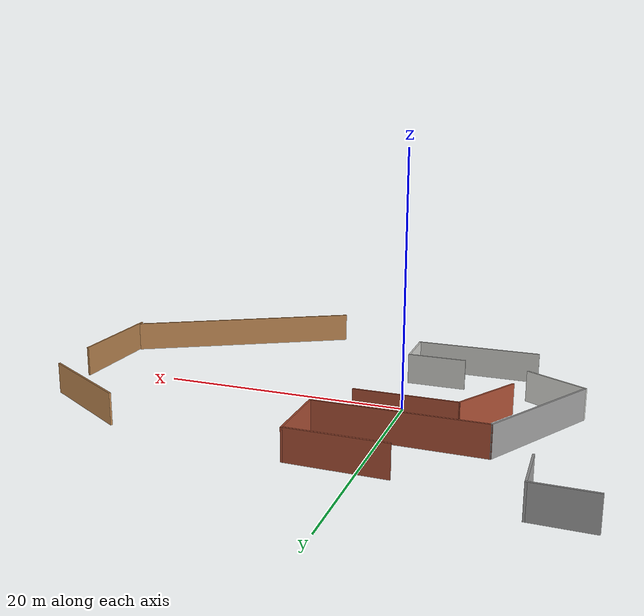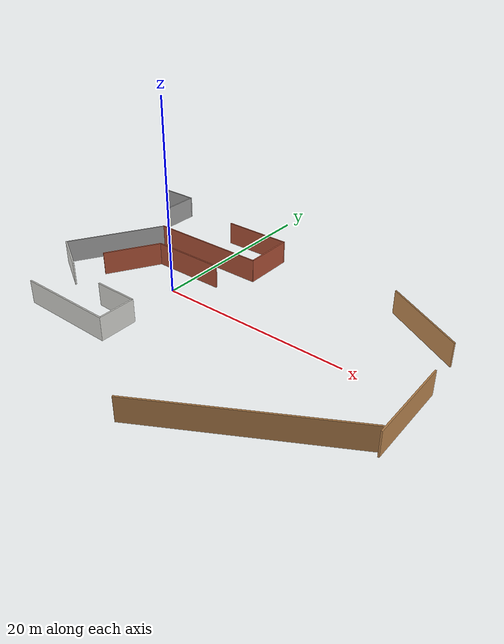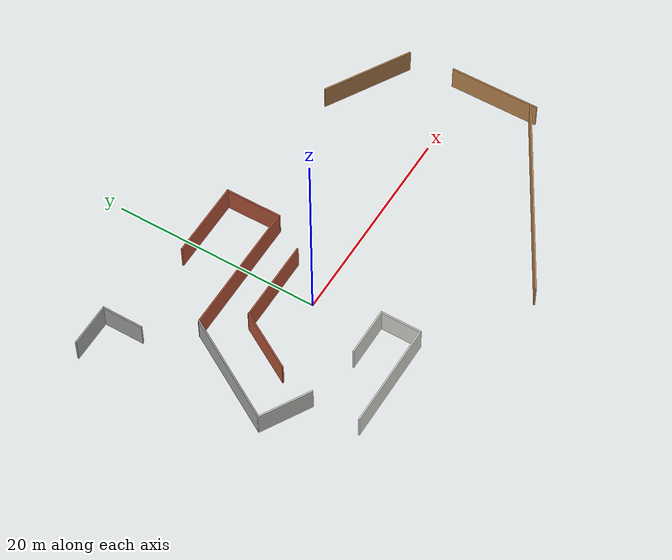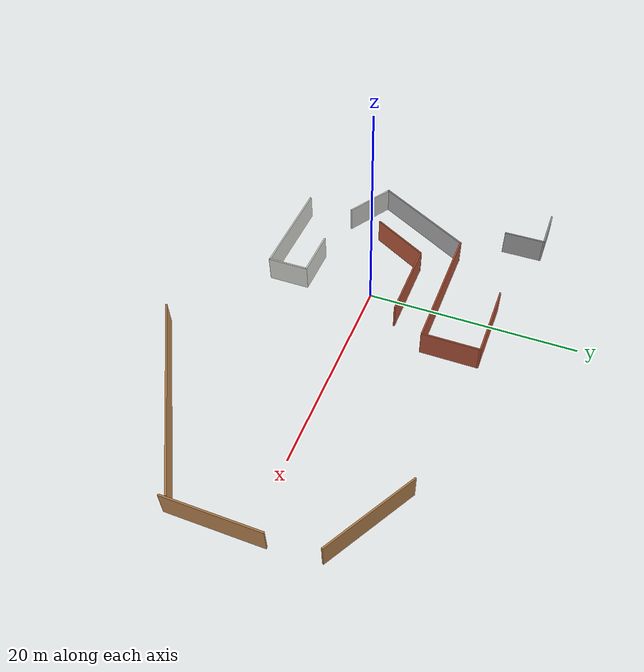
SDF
<?xml version='1.0'?>
<sdf version='1.7'>
  <model name='world_walls_cones'>
    <pose>6.22623 -1.01315 0 0 -0 0</pose>
    <link name='Wall_0'>
      <collision name='Wall_0_Collision'>
        <geometry>
          <box>
            <size>5.25 0.15 2.5</size>
          </box>
        </geometry>
        <pose>0 0 1.25 0 -0 0</pose>
      </collision>
      <visual name='Wall_0_Visual'>
        <pose>0 0 1.25 0 -0 0</pose>
        <geometry>
          <box>
            <size>5.25 0.15 2.5</size>
          </box>
        </geometry>
        <material>
          <script>
            <uri>file://media/materials/scripts/gazebo.material</uri>
            <name>Gazebo/CeilingTiled</name>
          </script>
          <ambient>1 1 1 1</ambient>
        </material>
        <meta>
          <layer>0</layer>
        </meta>
      </visual>
      <pose>-17.1708 -3.02388 0 0 -0 2.61799</pose>
    </link>
    <link name='Wall_1'>
      <collision name='Wall_1_Collision'>
        <geometry>
          <box>
            <size>11 0.15 2.5</size>
          </box>
        </geometry>
        <pose>0 0 1.25 0 -0 0</pose>
      </collision>
      <visual name='Wall_1_Visual'>
        <pose>0 0 1.25 0 -0 0</pose>
        <geometry>
          <box>
            <size>11 0.15 2.5</size>
          </box>
        </geometry>
        <material>
          <script>
            <uri>file://media/materials/scripts/gazebo.material</uri>
            <name>Gazebo/Grey</name>
          </script>
          <ambient>1 1 1 1</ambient>
        </material>
        <meta>
          <layer>0</layer>
        </meta>
      </visual>
      <pose>-16.6666 2.94931 0 0 -0 1.0472</pose>
    </link>
    <link name='Wall_10'>
      <collision name='Wall_10_Collision'>
        <geometry>
          <box>
            <size>4 0.15 2.5</size>
          </box>
        </geometry>
        <pose>0 0 1.25 0 -0 0</pose>
      </collision>
      <visual name='Wall_10_Visual'>
        <pose>0 0 1.25 0 -0 0</pose>
        <geometry>
          <box>
            <size>4 0.15 2.5</size>
          </box>
        </geometry>
        <material>
          <script>
            <uri>file://media/materials/scripts/gazebo.material</uri>
            <name>Gazebo/CeilingTiled</name>
          </script>
          <ambient>1 1 1 1</ambient>
        </material>
        <meta>
          <layer>0</layer>
        </meta>
      </visual>
      <pose>-5.17498 -7.16902 0 0 -0 -1.5708</pose>
    </link>
    <link name='Wall_11'>
      <collision name='Wall_11_Collision'>
        <geometry>
          <box>
            <size>10.25 0.15 2.5</size>
          </box>
        </geometry>
        <pose>0 0 1.25 0 -0 0</pose>
      </collision>
      <visual name='Wall_11_Visual'>
        <pose>0 0 1.25 0 -0 0</pose>
        <geometry>
          <box>
            <size>10.25 0.15 2.5</size>
          </box>
        </geometry>
        <material>
          <script>
            <uri>file://media/materials/scripts/gazebo.material</uri>
            <name>Gazebo/CeilingTiled</name>
          </script>
          <ambient>1 1 1 1</ambient>
        </material>
        <meta>
          <layer>0</layer>
        </meta>
      </visual>
      <pose>-10.225 -9.09402 0 0 -0 3.14159</pose>
    </link>
    <link name='Wall_13'>
      <collision name='Wall_13_Collision'>
        <geometry>
          <box>
            <size>4 0.15 2.5</size>
          </box>
        </geometry>
        <pose>0 0 1.25 0 -0 0</pose>
      </collision>
      <visual name='Wall_13_Visual'>
        <pose>0 0 1.25 0 -0 0</pose>
        <geometry>
          <box>
            <size>4 0.15 2.5</size>
          </box>
        </geometry>
        <material>
          <script>
            <uri>file://media/materials/scripts/gazebo.material</uri>
            <name>Gazebo/Grey</name>
          </script>
          <ambient>1 1 1 1</ambient>
        </material>
        <meta>
          <layer>0</layer>
        </meta>
      </visual>
      <pose>-17.0328 13.4757 0 0 -0 1.5708</pose>
    </link>
    <link name='Wall_14'>
      <collision name='Wall_14_Collision'>
        <geometry>
          <box>
            <size>4.25 0.15 2.5</size>
          </box>
        </geometry>
        <pose>0 0 1.25 0 -0 0</pose>
      </collision>
      <visual name='Wall_14_Visual'>
        <pose>0 0 1.25 0 -0 0</pose>
        <geometry>
          <box>
            <size>4.25 0.15 2.5</size>
          </box>
        </geometry>
        <material>
          <script>
            <uri>file://media/materials/scripts/gazebo.material</uri>
            <name>Gazebo/Grey</name>
          </script>
          <ambient>1 1 1 1</ambient>
        </material>
        <meta>
          <layer>0</layer>
        </meta>
      </visual>
      <pose>-19.0828 15.4007 0 0 -0 3.14159</pose>
    </link>
    <link name='Wall_16'>
      <collision name='Wall_16_Collision'>
        <geometry>
          <box>
            <size>8.75 0.15 2.5</size>
          </box>
        </geometry>
        <pose>0 0 1.25 0 -0 0</pose>
      </collision>
      <visual name='Wall_16_Visual'>
        <pose>0 0 1.25 0 -0 0</pose>
        <geometry>
          <box>
            <size>8.75 0.15 2.5</size>
          </box>
        </geometry>
        <material>
          <script>
            <uri>file://media/materials/scripts/gazebo.material</uri>
            <name>Gazebo/Wood</name>
          </script>
          <ambient>1 1 1 1</ambient>
        </material>
        <meta>
          <layer>0</layer>
        </meta>
      </visual>
      <pose>21.1328 -1.63141 0 0 -0 -1.5708</pose>
    </link>
    <link name='Wall_18'>
      <collision name='Wall_18_Collision'>
        <geometry>
          <box>
            <size>9 0.15 2.5</size>
          </box>
        </geometry>
        <pose>0 0 1.25 0 -0 0</pose>
      </collision>
      <visual name='Wall_18_Visual'>
        <pose>0 0 1.25 0 -0 0</pose>
        <geometry>
          <box>
            <size>9 0.15 2.5</size>
          </box>
        </geometry>
        <material>
          <script>
            <uri>file://media/materials/scripts/gazebo.material</uri>
            <name>Gazebo/Wood</name>
          </script>
          <ambient>1 1 1 1</ambient>
        </material>
        <meta>
          <layer>0</layer>
        </meta>
      </visual>
      <pose>16.9155 9.33824 0 0 -0 -0.523599</pose>
    </link>
    <link name='Wall_2'>
      <collision name='Wall_2_Collision'>
        <geometry>
          <box>
            <size>13 0.15 2.5</size>
          </box>
        </geometry>
        <pose>0 0 1.25 0 -0 0</pose>
      </collision>
      <visual name='Wall_2_Visual'>
        <pose>0 0 1.25 0 -0 0</pose>
        <geometry>
          <box>
            <size>13 0.15 2.5</size>
          </box>
        </geometry>
        <material>
          <script>
            <uri>file://media/materials/scripts/gazebo.material</uri>
            <name>Gazebo/Bricks</name>
          </script>
          <ambient>1 1 1 1</ambient>
        </material>
        <meta>
          <layer>0</layer>
        </meta>
      </visual>
      <pose>-7.52913 7.6475 0 0 -0 0</pose>
    </link>
    <link name='Wall_20'>
      <collision name='Wall_20_Collision'>
        <geometry>
          <box>
            <size>20 0.15 2.5</size>
          </box>
        </geometry>
        <pose>0 0 1.25 0 -0 0</pose>
      </collision>
      <visual name='Wall_20_Visual'>
        <pose>0 0 1.25 0 -0 0</pose>
        <geometry>
          <box>
            <size>20 0.15 2.5</size>
          </box>
        </geometry>
        <material>
          <script>
            <uri>file://media/materials/scripts/gazebo.material</uri>
            <name>Gazebo/Wood</name>
          </script>
          <ambient>1 1 1 1</ambient>
        </material>
        <meta>
          <layer>0</layer>
        </meta>
      </visual>
      <pose>12.3801 -10.4108 0 0 -0 0.523599</pose>
    </link>
    <link name='Wall_3'>
      <collision name='Wall_3_Collision'>
        <geometry>
          <box>
            <size>5.5 0.15 2.5</size>
          </box>
        </geometry>
        <pose>0 0 1.25 0 -0 0</pose>
      </collision>
      <visual name='Wall_3_Visual'>
        <pose>0 0 1.25 0 -0 0</pose>
        <geometry>
          <box>
            <size>5.5 0.15 2.5</size>
          </box>
        </geometry>
        <material>
          <script>
            <uri>file://media/materials/scripts/gazebo.material</uri>
            <name>Gazebo/Bricks</name>
          </script>
          <ambient>1 1 1 1</ambient>
        </material>
        <meta>
          <layer>0</layer>
        </meta>
      </visual>
      <pose>-1.10413 10.3225 0 0 -0 1.5708</pose>
    </link>
    <link name='Wall_4'>
      <collision name='Wall_4_Collision'>
        <geometry>
          <box>
            <size>7.5 0.15 2.5</size>
          </box>
        </geometry>
        <pose>0 0 1.25 0 -0 0</pose>
      </collision>
      <visual name='Wall_4_Visual'>
        <pose>0 0 1.25 0 -0 0</pose>
        <geometry>
          <box>
            <size>7.5 0.15 2.5</size>
          </box>
        </geometry>
        <material>
          <script>
            <uri>file://media/materials/scripts/gazebo.material</uri>
            <name>Gazebo/Bricks</name>
          </script>
          <ambient>1 1 1 1</ambient>
        </material>
        <meta>
          <layer>0</layer>
        </meta>
      </visual>
      <pose>-4.77913 12.9975 0 0 -0 3.14159</pose>
    </link>
    <link name='Wall_6'>
      <collision name='Wall_6_Collision'>
        <geometry>
          <box>
            <size>6.25 0.15 2.5</size>
          </box>
        </geometry>
        <pose>0 0 1.25 0 -0 0</pose>
      </collision>
      <visual name='Wall_6_Visual'>
        <pose>0 0 1.25 0 -0 0</pose>
        <geometry>
          <box>
            <size>6.25 0.15 2.5</size>
          </box>
        </geometry>
        <material>
          <script>
            <uri>file://media/materials/scripts/gazebo.material</uri>
            <name>Gazebo/Bricks</name>
          </script>
          <ambient>1 1 1 1</ambient>
        </material>
        <meta>
          <layer>0</layer>
        </meta>
      </visual>
      <pose>-12.6911 1.74591 0 0 -0 1.0472</pose>
    </link>
    <link name='Wall_7'>
      <collision name='Wall_7_Collision'>
        <geometry>
          <box>
            <size>8 0.15 2.5</size>
          </box>
        </geometry>
        <pose>0 0 1.25 0 -0 0</pose>
      </collision>
      <visual name='Wall_7_Visual'>
        <pose>0 0 1.25 0 -0 0</pose>
        <geometry>
          <box>
            <size>8 0.15 2.5</size>
          </box>
        </geometry>
        <material>
          <script>
            <uri>file://media/materials/scripts/gazebo.material</uri>
            <name>Gazebo/Bricks</name>
          </script>
          <ambient>1 1 1 1</ambient>
        </material>
        <meta>
          <layer>0</layer>
        </meta>
      </visual>
      <pose>-7.24106 4.38729 0 0 -0 0</pose>
    </link>
    <link name='Wall_9'>
      <collision name='Wall_9_Collision'>
        <geometry>
          <box>
            <size>4.75 0.15 2.5</size>
          </box>
        </geometry>
        <pose>0 0 1.25 0 -0 0</pose>
      </collision>
      <visual name='Wall_9_Visual'>
        <pose>0 0 1.25 0 -0 0</pose>
        <geometry>
          <box>
            <size>4.75 0.15 2.5</size>
          </box>
        </geometry>
        <material>
          <script>
            <uri>file://media/materials/scripts/gazebo.material</uri>
            <name>Gazebo/CeilingTiled</name>
          </script>
          <ambient>1 1 1 1</ambient>
        </material>
        <meta>
          <layer>0</layer>
        </meta>
      </visual>
      <pose>-7.47498 -5.24402 0 0 -0 0</pose>
    </link>
    <static>1</static>
  </model>
</sdf>
